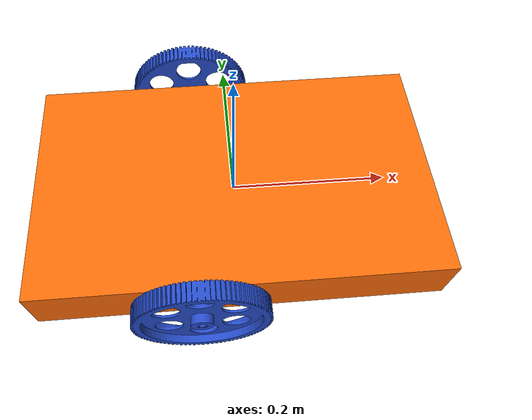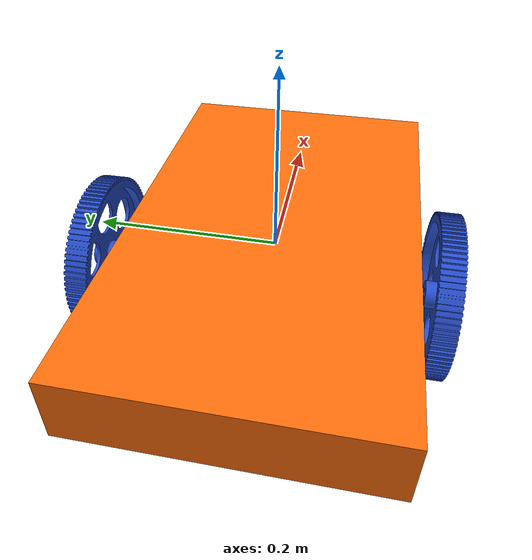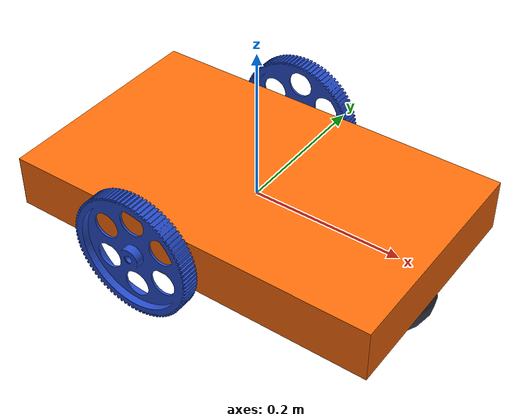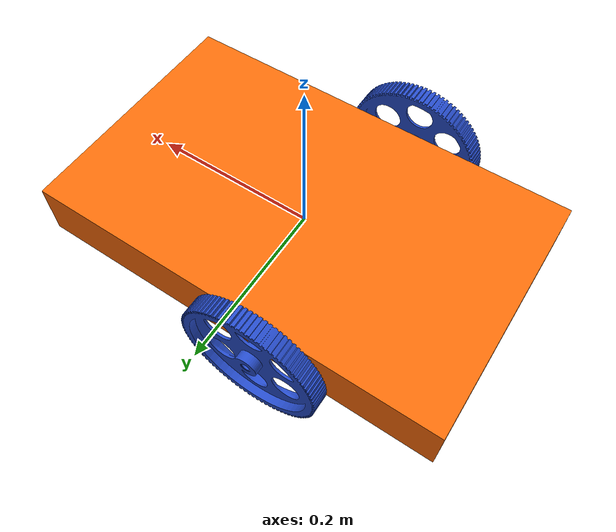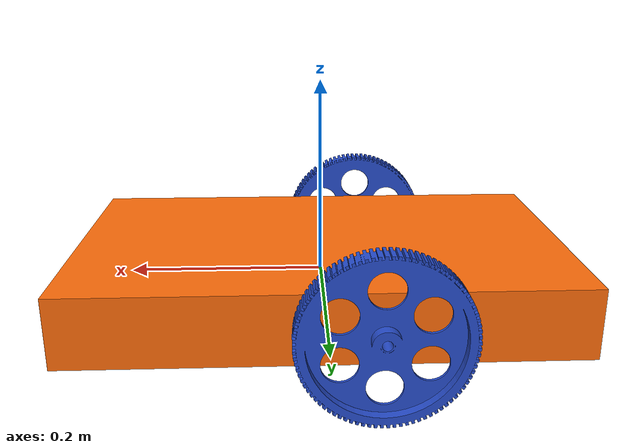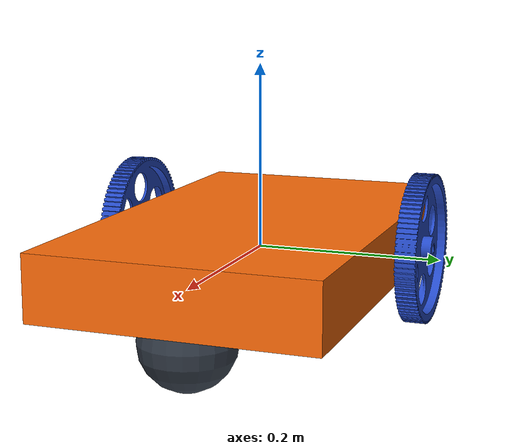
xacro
<?xml version="1.0" ?>

<robot name="Differential_Drive" xmlns:xacro="https://www.ros.org/wiki/xacro" >

  <material name="black">
    <color rgba="0.0 0.0 0.0 1.0"/>
  </material>
  <material name="blue">
    <color rgba="0.203125 0.23828125 0.28515625 1.0"/>
  </material>
  <material name="green">
    <color rgba="0.0 0.8 0.0 1.0"/>
  </material>
  <material name="grey">
    <color rgba="0.2 0.2 0.2 1.0"/>
  </material>
  <material name="orange">
    <color rgba="1.0 0.423529411765 0.0392156862745 1.0"/>
  </material>
  <material name="brown">
    <color rgba="0.870588235294 0.811764705882 0.764705882353 1.0"/>
  </material>
  <material name="red">
    <color rgba="0.80078125 0.12890625 0.1328125 1.0"/>
  </material>
  <material name="white">
    <color rgba="1.0 1.0 1.0 1.0"/>
  </material>

  <gazebo reference="link_chassis">
    <material>Gazebo/Orange</material>
  </gazebo>
  <gazebo reference="link_left_wheel">
    <material>Gazebo/Blue</material>
  </gazebo>
  <gazebo reference="link_right_wheel">
    <material>Gazebo/Blue</material>
  </gazebo>

  <link name="link_chassis">
    <!-- pose and inertial -->
    <pose>0 0 0.1 0 0 0</pose>

    <inertial>
      <mass value="5"/>
      <origin rpy="0 0 0" xyz="0 0 0.1"/>
      <inertia ixx="0.0395416666667" ixy="0" ixz="0" iyy="0.106208333333" iyz="0" izz="0.106208333333"/>
    </inertial>

    <collision name="collision_chassis">
      <geometry>
        <box size="0.5 0.3 0.07"/>
      </geometry>
    </collision>

    <visual>
      <origin rpy="0 0 0" xyz="0 0 0"/>
      <geometry>
        <box size="0.5 0.3 0.07"/>
      </geometry>
      <material name="orange"/>
    </visual>

    <!-- caster front -->
    <collision name="caster_front_collision">
      <origin rpy=" 0 0 0" xyz="0.35 0 -0.05"/>
      <geometry>
        <sphere radius="0.05"/>
      </geometry>
      <surface>
        <friction>
          <ode>
            <mu>0</mu>
            <mu2>0</mu2>
            <slip1>1.0</slip1>
            <slip2>1.0</slip2>
          </ode>
        </friction>
      </surface>
    </collision>
    <visual name="caster_front_visual">
      <origin rpy=" 0 0 0" xyz="0.2 0 -0.05"/>
      <geometry>
        <sphere radius="0.05"/>
      </geometry>
      <material name="blue"/>
    </visual>
    </link>

  <!-- Create wheel right -->

  <link name="link_right_wheel">
    <inertial>
      <mass value="0.2"/>
      <origin rpy="0 1.5707 1.5707" xyz="0 0 0"/>
      <inertia ixx="0.00052666666" ixy="0" ixz="0" iyy="0.00052666666" iyz="0" izz="0.001"/>
    </inertial>

    <collision name="link_right_wheel_collision">
      <origin rpy="0 1.5707 1.5707" xyz="0 0 0" />
      <geometry>
        <cylinder length="0.04" radius="0.1"/>
      </geometry>
    </collision>

    <visual name="link_right_wheel_visual">
      <origin rpy="0 1.5707 0" xyz="0 0.02 0"/>
      <geometry>
        <!--cylinder length="0.04" radius="0.1"/-->
        <mesh filename="package://differential_wmr/meshes/tyre11.dae" scale="1.5 1 1.5"/>
      </geometry>
    </visual>

  </link>

  <!--   Joint for right wheel  -->
  <joint name="joint_right_wheel" type="continuous">
    <origin rpy="0 0 0" xyz="-0.05 0.15 0"/>
    <child link="link_right_wheel" />
    <parent link="link_chassis"/>
    <axis rpy="0 0 0" xyz="0 1 0"/>
    <limit effort="10000" velocity="1000"/>
    <joint_properties damping="1.0" friction="1.0" />
  </joint>

  <!--   Joint transmission for right wheel  -->
  <transmission name="right_wheel_transmission">
    <type>transmission_interface/SimpleTransmission</type>
    <joint name="joint_right_wheel">
      <hardwareInterface>hardware_interface/VelocityJointInterface</hardwareInterface>
    </joint>
    <actuator name="right_wheel_actuator">
      <mechanicalReduction>1</mechanicalReduction>
      <hardwareInterface>VelocityJointInterface</hardwareInterface>
    </actuator>
  </transmission>

  <!-- Left Wheel link -->
  <link name="link_left_wheel">
    <inertial>
      <mass value="0.2"/>
      <origin rpy="0 1.5707 1.5707" xyz="0 0 0"/>
      <inertia ixx="0.00052666666" ixy="0" ixz="0" iyy="0.00052666666" iyz="0" izz="0.001"/>
    </inertial>

    <collision name="link_left_wheel_collision">
      <origin rpy="0 1.5707 1.5707" xyz="0 0 0" />
      <geometry>
        <cylinder length="0.04" radius="0.1"/>
      </geometry>
    </collision>

    <visual name="link_left_wheel_visual">
      <origin rpy="0 1.5707 0" xyz="0 -0.02 0"/>
      <geometry>
        <!--cylinder length="0.04" radius="0.1"/-->
        <mesh filename="package://differential_wmr/meshes/tyre11.dae" scale="1.5 1 1.5"/>
      </geometry>
    </visual>

  </link>

  <!--   Joint for right wheel  -->
  <joint name="joint_left_wheel" type="continuous">
    <origin rpy="0 0 0" xyz="-0.05 -0.15 0"/>
    <child link="link_left_wheel" />
    <parent link="link_chassis"/>
    <axis rpy="0 0 0" xyz="0 1 0"/>
    <limit effort="10000" velocity="1000"/>
    <joint_properties damping="1.0" friction="1.0" />
  </joint>

  <transmission name="left_wheel_transmission">
    <type>transmission_interface/SimpleTransmission</type>
    <joint name="joint_left_wheel">
      <hardwareInterface>hardware_interface/VelocityJointInterface</hardwareInterface>
    </joint>
    <actuator name="left_wheel_actuator">
      <mechanicalReduction>1</mechanicalReduction>
      <hardwareInterface>VelocityJointInterface</hardwareInterface>
    </actuator>
    </transmission>

 <gazebo>
  <plugin name="gazebo_ros_control" filename= "libgazebo_ros_control.so">
   <robotNamespace>/</robotNamespace>
  </plugin>
 </gazebo>

</robot>
